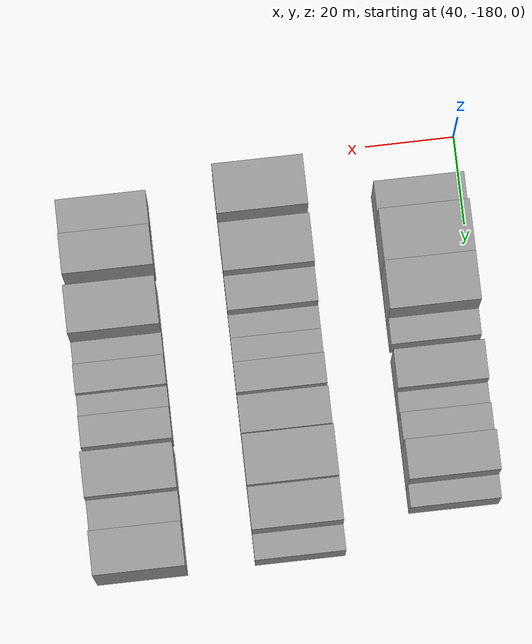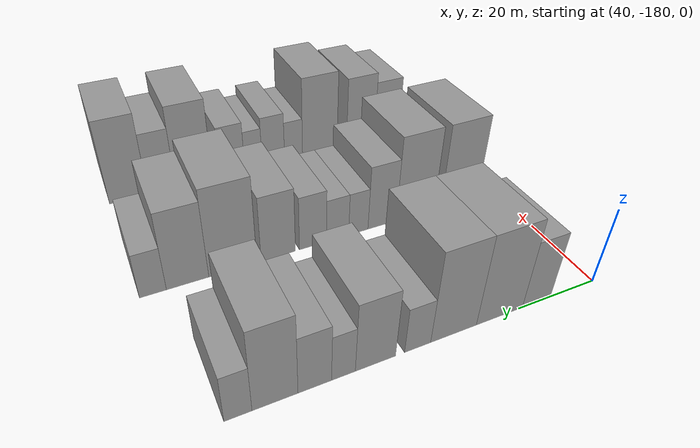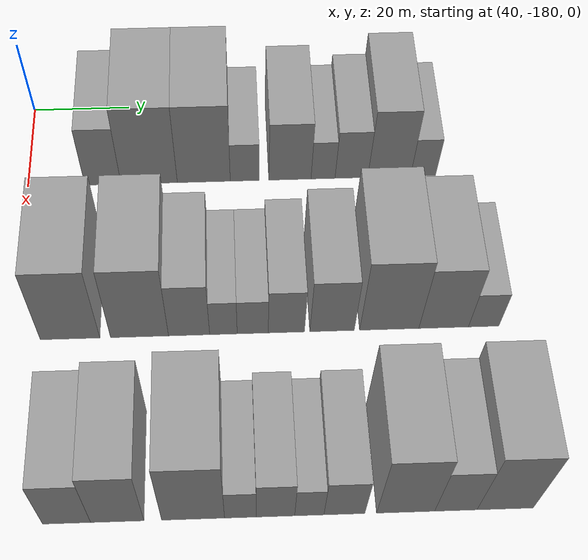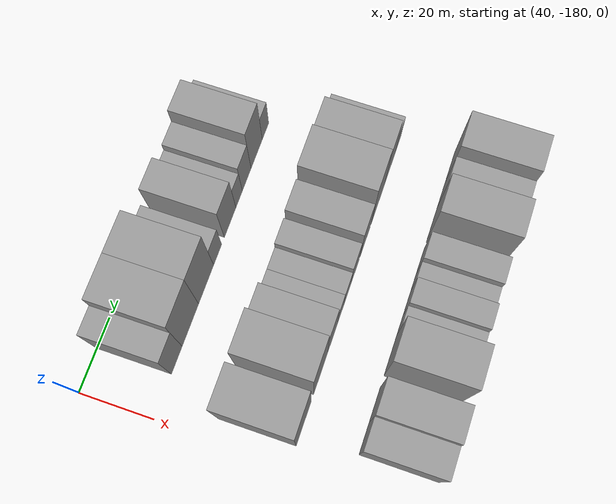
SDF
<sdf version="1.6">
 <world name="default">
  <model name="building_23">
   <static>1</static>
   <pose>50.0000 -164.6802 0 0.000000 0.000000 0.000000</pose>
   <link name="link">
    <pose>0 0 9.00 0 0 0</pose>
    <collision name="collision"><geometry><box><size>20.0000 7.3603 18.0000</size></box></geometry></collision>
    <visual name="visual">
     <cast_shadows>0</cast_shadows>
     <geometry><box><size>20.0000 7.3603 18.0000</size></box></geometry>
     <material>
      <script>
       <uri>model://grey_wall/materials/scripts</uri>
       <uri>model://grey_wall/materials/textures</uri>
       <name>vrc/grey_wall</name>
      </script>
     </material>
    </visual>
   </link>
  </model>
  <model name="building_24">
   <static>1</static>
   <pose>50.0000 -155.2501 0 0.000000 0.000000 0.000000</pose>
   <link name="link">
    <pose>0 0 12.00 0 0 0</pose>
    <collision name="collision"><geometry><box><size>20.0000 11.4999 24.0000</size></box></geometry></collision>
    <visual name="visual">
     <cast_shadows>0</cast_shadows>
     <geometry><box><size>20.0000 11.4999 24.0000</size></box></geometry>
     <material>
      <script>
       <uri>model://grey_wall/materials/scripts</uri>
       <uri>model://grey_wall/materials/textures</uri>
       <name>vrc/grey_wall</name>
      </script>
     </material>
    </visual>
   </link>
  </model>
  <model name="building_25">
   <static>1</static>
   <pose>50.0000 -144.0973 0 0.000000 0.000000 0.000000</pose>
   <link name="link">
    <pose>0 0 12.00 0 0 0</pose>
    <collision name="collision"><geometry><box><size>20.0000 10.8057 24.0000</size></box></geometry></collision>
    <visual name="visual">
     <cast_shadows>0</cast_shadows>
     <geometry><box><size>20.0000 10.8057 24.0000</size></box></geometry>
     <material>
      <script>
       <uri>model://grey_wall/materials/scripts</uri>
       <uri>model://grey_wall/materials/textures</uri>
       <name>vrc/grey_wall</name>
      </script>
     </material>
    </visual>
   </link>
  </model>
  <model name="building_26">
   <static>1</static>
   <pose>50.0000 -135.7476 0 0.000000 0.000000 0.000000</pose>
   <link name="link">
    <pose>0 0 6.00 0 0 0</pose>
    <collision name="collision"><geometry><box><size>20.0000 5.8939 12.0000</size></box></geometry></collision>
    <visual name="visual">
     <cast_shadows>0</cast_shadows>
     <geometry><box><size>20.0000 5.8939 12.0000</size></box></geometry>
     <material>
      <script>
       <uri>model://grey_wall/materials/scripts</uri>
       <uri>model://grey_wall/materials/textures</uri>
       <name>vrc/grey_wall</name>
      </script>
     </material>
    </visual>
   </link>
  </model>
  <model name="building_27">
   <static>1</static>
   <pose>50.0000 -126.4780 0 0.000000 0.000000 0.000000</pose>
   <link name="link">
    <pose>0 0 9.00 0 0 0</pose>
    <collision name="collision"><geometry><box><size>20.0000 8.6452 18.0000</size></box></geometry></collision>
    <visual name="visual">
     <cast_shadows>0</cast_shadows>
     <geometry><box><size>20.0000 8.6452 18.0000</size></box></geometry>
     <material>
      <script>
       <uri>model://grey_wall/materials/scripts</uri>
       <uri>model://grey_wall/materials/textures</uri>
       <name>vrc/grey_wall</name>
      </script>
     </material>
    </visual>
   </link>
  </model>
  <model name="building_28">
   <static>1</static>
   <pose>50.0000 -119.6944 0 0.000000 0.000000 0.000000</pose>
   <link name="link">
    <pose>0 0 6.00 0 0 0</pose>
    <collision name="collision"><geometry><box><size>20.0000 4.9221 12.0000</size></box></geometry></collision>
    <visual name="visual">
     <cast_shadows>0</cast_shadows>
     <geometry><box><size>20.0000 4.9221 12.0000</size></box></geometry>
     <material>
      <script>
       <uri>model://grey_wall/materials/scripts</uri>
       <uri>model://grey_wall/materials/textures</uri>
       <name>vrc/grey_wall</name>
      </script>
     </material>
    </visual>
   </link>
  </model>
  <model name="building_29">
   <static>1</static>
   <pose>50.0000 -113.8767 0 0.000000 0.000000 0.000000</pose>
   <link name="link">
    <pose>0 0 7.50 0 0 0</pose>
    <collision name="collision"><geometry><box><size>20.0000 6.7132 15.0000</size></box></geometry></collision>
    <visual name="visual">
     <cast_shadows>0</cast_shadows>
     <geometry><box><size>20.0000 6.7132 15.0000</size></box></geometry>
     <material>
      <script>
       <uri>model://grey_wall/materials/scripts</uri>
       <uri>model://grey_wall/materials/textures</uri>
       <name>vrc/grey_wall</name>
      </script>
     </material>
    </visual>
   </link>
  </model>
  <model name="building_30">
   <static>1</static>
   <pose>50.0000 -106.1210 0 0.000000 0.000000 0.000000</pose>
   <link name="link">
    <pose>0 0 10.50 0 0 0</pose>
    <collision name="collision"><geometry><box><size>20.0000 8.7982 21.0000</size></box></geometry></collision>
    <visual name="visual">
     <cast_shadows>0</cast_shadows>
     <geometry><box><size>20.0000 8.7982 21.0000</size></box></geometry>
     <material>
      <script>
       <uri>model://grey_wall/materials/scripts</uri>
       <uri>model://grey_wall/materials/textures</uri>
       <name>vrc/grey_wall</name>
      </script>
     </material>
    </visual>
   </link>
  </model>
  <model name="building_31">
   <static>1</static>
   <pose>50.0000 -99.1354 0 0.000000 0.000000 0.000000</pose>
   <link name="link">
    <pose>0 0 6.00 0 0 0</pose>
    <collision name="collision"><geometry><box><size>20.0000 5.1730 12.0000</size></box></geometry></collision>
    <visual name="visual">
     <cast_shadows>0</cast_shadows>
     <geometry><box><size>20.0000 5.1730 12.0000</size></box></geometry>
     <material>
      <script>
       <uri>model://grey_wall/materials/scripts</uri>
       <uri>model://grey_wall/materials/textures</uri>
       <name>vrc/grey_wall</name>
      </script>
     </material>
    </visual>
   </link>
  </model>
  <model name="building_100">
   <static>1</static>
   <pose>85.0000 -169.3282 0 0.000000 0.000000 0.000000</pose>
   <link name="link">
    <pose>0 0 12.00 0 0 0</pose>
    <collision name="collision"><geometry><box><size>20.0000 11.0988 24.0000</size></box></geometry></collision>
    <visual name="visual">
     <cast_shadows>0</cast_shadows>
     <geometry><box><size>20.0000 11.0988 24.0000</size></box></geometry>
     <material>
      <script>
       <uri>model://grey_wall/materials/scripts</uri>
       <uri>model://grey_wall/materials/textures</uri>
       <name>vrc/grey_wall</name>
      </script>
     </material>
    </visual>
   </link>
  </model>
  <model name="building_101">
   <static>1</static>
   <pose>85.0000 -156.3685 0 0.000000 0.000000 0.000000</pose>
   <link name="link">
    <pose>0 0 12.00 0 0 0</pose>
    <collision name="collision"><geometry><box><size>20.0000 10.8207 24.0000</size></box></geometry></collision>
    <visual name="visual">
     <cast_shadows>0</cast_shadows>
     <geometry><box><size>20.0000 10.8207 24.0000</size></box></geometry>
     <material>
      <script>
       <uri>model://grey_wall/materials/scripts</uri>
       <uri>model://grey_wall/materials/textures</uri>
       <name>vrc/grey_wall</name>
      </script>
     </material>
    </visual>
   </link>
  </model>
  <model name="building_102">
   <static>1</static>
   <pose>85.0000 -147.1111 0 0.000000 0.000000 0.000000</pose>
   <link name="link">
    <pose>0 0 9.00 0 0 0</pose>
    <collision name="collision"><geometry><box><size>20.0000 7.6941 18.0000</size></box></geometry></collision>
    <visual name="visual">
     <cast_shadows>0</cast_shadows>
     <geometry><box><size>20.0000 7.6941 18.0000</size></box></geometry>
     <material>
      <script>
       <uri>model://grey_wall/materials/scripts</uri>
       <uri>model://grey_wall/materials/textures</uri>
       <name>vrc/grey_wall</name>
      </script>
     </material>
    </visual>
   </link>
  </model>
  <model name="building_103">
   <static>1</static>
   <pose>85.0000 -140.6866 0 0.000000 0.000000 0.000000</pose>
   <link name="link">
    <pose>0 0 6.00 0 0 0</pose>
    <collision name="collision"><geometry><box><size>20.0000 5.1549 12.0000</size></box></geometry></collision>
    <visual name="visual">
     <cast_shadows>0</cast_shadows>
     <geometry><box><size>20.0000 5.1549 12.0000</size></box></geometry>
     <material>
      <script>
       <uri>model://grey_wall/materials/scripts</uri>
       <uri>model://grey_wall/materials/textures</uri>
       <name>vrc/grey_wall</name>
      </script>
     </material>
    </visual>
   </link>
  </model>
  <model name="building_104">
   <static>1</static>
   <pose>85.0000 -135.2049 0 0.000000 0.000000 0.000000</pose>
   <link name="link">
    <pose>0 0 6.00 0 0 0</pose>
    <collision name="collision"><geometry><box><size>20.0000 5.8084 12.0000</size></box></geometry></collision>
    <visual name="visual">
     <cast_shadows>0</cast_shadows>
     <geometry><box><size>20.0000 5.8084 12.0000</size></box></geometry>
     <material>
      <script>
       <uri>model://grey_wall/materials/scripts</uri>
       <uri>model://grey_wall/materials/textures</uri>
       <name>vrc/grey_wall</name>
      </script>
     </material>
    </visual>
   </link>
  </model>
  <model name="building_105">
   <static>1</static>
   <pose>85.0000 -128.8961 0 0.000000 0.000000 0.000000</pose>
   <link name="link">
    <pose>0 0 7.50 0 0 0</pose>
    <collision name="collision"><geometry><box><size>20.0000 6.8091 15.0000</size></box></geometry></collision>
    <visual name="visual">
     <cast_shadows>0</cast_shadows>
     <geometry><box><size>20.0000 6.8091 15.0000</size></box></geometry>
     <material>
      <script>
       <uri>model://grey_wall/materials/scripts</uri>
       <uri>model://grey_wall/materials/textures</uri>
       <name>vrc/grey_wall</name>
      </script>
     </material>
    </visual>
   </link>
  </model>
  <model name="building_106">
   <static>1</static>
   <pose>85.0000 -120.3109 0 0.000000 0.000000 0.000000</pose>
   <link name="link">
    <pose>0 0 9.00 0 0 0</pose>
    <collision name="collision"><geometry><box><size>20.0000 8.3613 18.0000</size></box></geometry></collision>
    <visual name="visual">
     <cast_shadows>0</cast_shadows>
     <geometry><box><size>20.0000 8.3613 18.0000</size></box></geometry>
     <material>
      <script>
       <uri>model://grey_wall/materials/scripts</uri>
       <uri>model://grey_wall/materials/textures</uri>
       <name>vrc/grey_wall</name>
      </script>
     </material>
    </visual>
   </link>
  </model>
  <model name="building_107">
   <static>1</static>
   <pose>85.0000 -109.5579 0 0.000000 0.000000 0.000000</pose>
   <link name="link">
    <pose>0 0 12.00 0 0 0</pose>
    <collision name="collision"><geometry><box><size>20.0000 11.1447 24.0000</size></box></geometry></collision>
    <visual name="visual">
     <cast_shadows>0</cast_shadows>
     <geometry><box><size>20.0000 11.1447 24.0000</size></box></geometry>
     <material>
      <script>
       <uri>model://grey_wall/materials/scripts</uri>
       <uri>model://grey_wall/materials/textures</uri>
       <name>vrc/grey_wall</name>
      </script>
     </material>
    </visual>
   </link>
  </model>
  <model name="building_108">
   <static>1</static>
   <pose>85.0000 -99.3019 0 0.000000 0.000000 0.000000</pose>
   <link name="link">
    <pose>0 0 10.50 0 0 0</pose>
    <collision name="collision"><geometry><box><size>20.0000 9.3673 21.0000</size></box></geometry></collision>
    <visual name="visual">
     <cast_shadows>0</cast_shadows>
     <geometry><box><size>20.0000 9.3673 21.0000</size></box></geometry>
     <material>
      <script>
       <uri>model://grey_wall/materials/scripts</uri>
       <uri>model://grey_wall/materials/textures</uri>
       <name>vrc/grey_wall</name>
      </script>
     </material>
    </visual>
   </link>
  </model>
  <model name="building_109">
   <static>1</static>
   <pose>85.0000 -91.7395 0 0.000000 0.000000 0.000000</pose>
   <link name="link">
    <pose>0 0 6.00 0 0 0</pose>
    <collision name="collision"><geometry><box><size>20.0000 5.7574 12.0000</size></box></geometry></collision>
    <visual name="visual">
     <cast_shadows>0</cast_shadows>
     <geometry><box><size>20.0000 5.7574 12.0000</size></box></geometry>
     <material>
      <script>
       <uri>model://grey_wall/materials/scripts</uri>
       <uri>model://grey_wall/materials/textures</uri>
       <name>vrc/grey_wall</name>
      </script>
     </material>
    </visual>
   </link>
  </model>
  <model name="building_172">
   <static>1</static>
   <pose>120.0000 -167.8748 0 0.000000 0.000000 0.000000</pose>
   <link name="link">
    <pose>0 0 9.00 0 0 0</pose>
    <collision name="collision"><geometry><box><size>20.0000 8.1332 18.0000</size></box></geometry></collision>
    <visual name="visual">
     <cast_shadows>0</cast_shadows>
     <geometry><box><size>20.0000 8.1332 18.0000</size></box></geometry>
     <material>
      <script>
       <uri>model://grey_wall/materials/scripts</uri>
       <uri>model://grey_wall/materials/textures</uri>
       <name>vrc/grey_wall</name>
      </script>
     </material>
    </visual>
   </link>
  </model>
  <model name="building_173">
   <static>1</static>
   <pose>120.0000 -159.2900 0 0.000000 0.000000 0.000000</pose>
   <link name="link">
    <pose>0 0 10.50 0 0 0</pose>
    <collision name="collision"><geometry><box><size>20.0000 9.0364 21.0000</size></box></geometry></collision>
    <visual name="visual">
     <cast_shadows>0</cast_shadows>
     <geometry><box><size>20.0000 9.0364 21.0000</size></box></geometry>
     <material>
      <script>
       <uri>model://grey_wall/materials/scripts</uri>
       <uri>model://grey_wall/materials/textures</uri>
       <name>vrc/grey_wall</name>
      </script>
     </material>
    </visual>
   </link>
  </model>
  <model name="building_174">
   <static>1</static>
   <pose>120.0000 -146.4342 0 0.000000 0.000000 0.000000</pose>
   <link name="link">
    <pose>0 0 12.00 0 0 0</pose>
    <collision name="collision"><geometry><box><size>20.0000 10.6753 24.0000</size></box></geometry></collision>
    <visual name="visual">
     <cast_shadows>0</cast_shadows>
     <geometry><box><size>20.0000 10.6753 24.0000</size></box></geometry>
     <material>
      <script>
       <uri>model://grey_wall/materials/scripts</uri>
       <uri>model://grey_wall/materials/textures</uri>
       <name>vrc/grey_wall</name>
      </script>
     </material>
    </visual>
   </link>
  </model>
  <model name="building_175">
   <static>1</static>
   <pose>120.0000 -138.4185 0 0.000000 0.000000 0.000000</pose>
   <link name="link">
    <pose>0 0 6.00 0 0 0</pose>
    <collision name="collision"><geometry><box><size>20.0000 5.3561 12.0000</size></box></geometry></collision>
    <visual name="visual">
     <cast_shadows>0</cast_shadows>
     <geometry><box><size>20.0000 5.3561 12.0000</size></box></geometry>
     <material>
      <script>
       <uri>model://grey_wall/materials/scripts</uri>
       <uri>model://grey_wall/materials/textures</uri>
       <name>vrc/grey_wall</name>
      </script>
     </material>
    </visual>
   </link>
  </model>
  <model name="building_176">
   <static>1</static>
   <pose>120.0000 -132.4523 0 0.000000 0.000000 0.000000</pose>
   <link name="link">
    <pose>0 0 7.50 0 0 0</pose>
    <collision name="collision"><geometry><box><size>20.0000 6.5764 15.0000</size></box></geometry></collision>
    <visual name="visual">
     <cast_shadows>0</cast_shadows>
     <geometry><box><size>20.0000 6.5764 15.0000</size></box></geometry>
     <material>
      <script>
       <uri>model://grey_wall/materials/scripts</uri>
       <uri>model://grey_wall/materials/textures</uri>
       <name>vrc/grey_wall</name>
      </script>
     </material>
    </visual>
   </link>
  </model>
  <model name="building_177">
   <static>1</static>
   <pose>120.0000 -126.6715 0 0.000000 0.000000 0.000000</pose>
   <link name="link">
    <pose>0 0 6.00 0 0 0</pose>
    <collision name="collision"><geometry><box><size>20.0000 4.9851 12.0000</size></box></geometry></collision>
    <visual name="visual">
     <cast_shadows>0</cast_shadows>
     <geometry><box><size>20.0000 4.9851 12.0000</size></box></geometry>
     <material>
      <script>
       <uri>model://grey_wall/materials/scripts</uri>
       <uri>model://grey_wall/materials/textures</uri>
       <name>vrc/grey_wall</name>
      </script>
     </material>
    </visual>
   </link>
  </model>
  <model name="building_178">
   <static>1</static>
   <pose>120.0000 -120.6826 0 0.000000 0.000000 0.000000</pose>
   <link name="link">
    <pose>0 0 7.50 0 0 0</pose>
    <collision name="collision"><geometry><box><size>20.0000 6.9928 15.0000</size></box></geometry></collision>
    <visual name="visual">
     <cast_shadows>0</cast_shadows>
     <geometry><box><size>20.0000 6.9928 15.0000</size></box></geometry>
     <material>
      <script>
       <uri>model://grey_wall/materials/scripts</uri>
       <uri>model://grey_wall/materials/textures</uri>
       <name>vrc/grey_wall</name>
      </script>
     </material>
    </visual>
   </link>
  </model>
  <model name="building_179">
   <static>1</static>
   <pose>120.0000 -110.2126 0 0.000000 0.000000 0.000000</pose>
   <link name="link">
    <pose>0 0 12.00 0 0 0</pose>
    <collision name="collision"><geometry><box><size>20.0000 9.9472 24.0000</size></box></geometry></collision>
    <visual name="visual">
     <cast_shadows>0</cast_shadows>
     <geometry><box><size>20.0000 9.9472 24.0000</size></box></geometry>
     <material>
      <script>
       <uri>model://grey_wall/materials/scripts</uri>
       <uri>model://grey_wall/materials/textures</uri>
       <name>vrc/grey_wall</name>
      </script>
     </material>
    </visual>
   </link>
  </model>
  <model name="building_180">
   <static>1</static>
   <pose>120.0000 -101.6165 0 0.000000 0.000000 0.000000</pose>
   <link name="link">
    <pose>0 0 9.00 0 0 0</pose>
    <collision name="collision"><geometry><box><size>20.0000 7.2450 18.0000</size></box></geometry></collision>
    <visual name="visual">
     <cast_shadows>0</cast_shadows>
     <geometry><box><size>20.0000 7.2450 18.0000</size></box></geometry>
     <material>
      <script>
       <uri>model://grey_wall/materials/scripts</uri>
       <uri>model://grey_wall/materials/textures</uri>
       <name>vrc/grey_wall</name>
      </script>
     </material>
    </visual>
   </link>
  </model>
  <model name="building_181">
   <static>1</static>
   <pose>120.0000 -93.1546 0 0.000000 0.000000 0.000000</pose>
   <link name="link">
    <pose>0 0 12.00 0 0 0</pose>
    <collision name="collision"><geometry><box><size>20.0000 9.6788 24.0000</size></box></geometry></collision>
    <visual name="visual">
     <cast_shadows>0</cast_shadows>
     <geometry><box><size>20.0000 9.6788 24.0000</size></box></geometry>
     <material>
      <script>
       <uri>model://grey_wall/materials/scripts</uri>
       <uri>model://grey_wall/materials/textures</uri>
       <name>vrc/grey_wall</name>
      </script>
     </material>
    </visual>
   </link>
  </model>
 </world>
</sdf>
